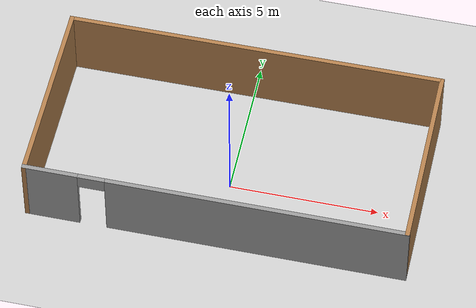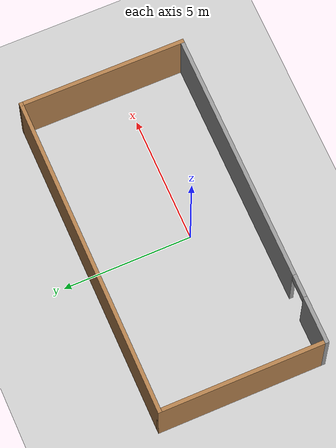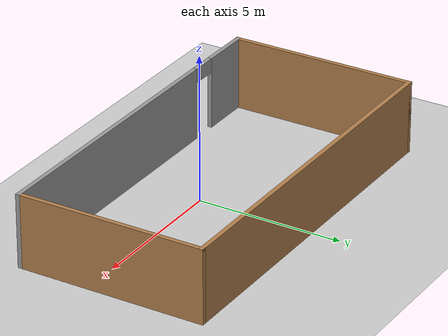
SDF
<sdf version="1.6">
 <world name="default">
  <light name="sun" type="directional">
   <pose>0 0 10 0 -0 0</pose>
   <diffuse>0.8 0.8 0.8 1</diffuse>
   <specular>0.1 0.1 0.1 1</specular>
   <attenuation>
    <range>1000</range>
    <constant>0.9</constant>
    <linear>0.01</linear>
    <quadratic>0.001</quadratic>
   </attenuation>
   <direction>-0.5 0.5 -1</direction>
  </light>
  <model name="ground_plane">
   <static>1</static>
   <link name="link">
    <collision name="collision">
     <geometry><plane><normal>0 0 1</normal><size>100 100</size></plane></geometry>
     <surface><friction><ode><mu>100</mu><mu2>50</mu2></ode></friction></surface>
    </collision>
    <visual name="visual">
     <cast_shadows>0</cast_shadows>
     <geometry><plane><normal>0 0 1</normal><size>100 100</size></plane></geometry>
     <material>
      <script><uri>file://media/materials/scripts/gazebo.material</uri><name>Gazebo/Grey</name></script>
     </material>
    </visual>
   </link>
  </model>
  <gravity>0 0 -9.8</gravity>
  <magnetic_field>6e-06 2.3e-05 -4.2e-05</magnetic_field>
  <atmosphere type="adiabatic"/>
  <physics name="default_physics" default="0" type="ode">
   <max_step_size>0.001</max_step_size>
   <real_time_factor>1</real_time_factor>
   <real_time_update_rate>1000</real_time_update_rate>
  </physics>
  <scene><ambient>0.4 0.4 0.4 1</ambient><background>0.7 0.7 0.7 1</background><shadows>1</shadows></scene>
  <spherical_coordinates>
   <surface_model>EARTH_WGS84</surface_model>
   <latitude_deg>0</latitude_deg>
   <longitude_deg>0</longitude_deg>
   <elevation>0</elevation>
   <heading_deg>0</heading_deg>
  </spherical_coordinates>
  <model name="Untitled">
   <pose>0.012845 0.776919 0 0 -0 0</pose>
   <link name="Wall_17">
    <collision name="Wall_17_Collision">
     <geometry><box><size>12.75 0.15 2.5</size></box></geometry>
     <pose>0 0 1.25 0 -0 0</pose>
    </collision>
    <visual name="Wall_17_Visual">
     <pose>0 0 1.25 0 -0 0</pose>
     <geometry><box><size>12.75 0.15 2.5</size></box></geometry>
     <material>
      <script><uri>file://media/materials/scripts/gazebo.material</uri><name>Gazebo/Wood</name></script>
      <ambient>1 1 1 1</ambient>
     </material>
    </visual>
    <pose>0 3.175 0 0 -0 0</pose>
   </link>
   <link name="Wall_18">
    <collision name="Wall_18_Collision">
     <geometry><box><size>6.5 0.15 2.5</size></box></geometry>
     <pose>0 0 1.25 0 -0 0</pose>
    </collision>
    <visual name="Wall_18_Visual">
     <pose>0 0 1.25 0 -0 0</pose>
     <geometry><box><size>6.5 0.15 2.5</size></box></geometry>
     <material>
      <script><uri>file://media/materials/scripts/gazebo.material</uri><name>Gazebo/Wood</name></script>
      <ambient>1 1 1 1</ambient>
     </material>
    </visual>
    <pose>6.3 0 0 0 0 -1.5708</pose>
   </link>
   <link name="Wall_19">
    <pose>0 -3.175 0 0 -0 3.14159</pose>
    <visual name="Wall_19_Visual_0">
     <pose>-1.3788 0 1.25 0 -0 0</pose>
     <geometry><box><size>9.99239 0.15 2.5</size></box></geometry>
     <material>
      <script><uri>file://media/materials/scripts/gazebo.material</uri><name>Gazebo/Grey</name></script>
      <ambient>1 1 1 1</ambient>
     </material>
    </visual>
    <collision name="Wall_19_Collision_0">
     <geometry><box><size>9.99239 0.15 2.5</size></box></geometry>
     <pose>-1.3788 0 1.25 0 -0 0</pose>
    </collision>
    <visual name="Wall_19_Visual_1">
     <pose>5.4462 0 1.25 0 -0 0</pose>
     <geometry><box><size>1.85761 0.15 2.5</size></box></geometry>
     <material>
      <script><uri>file://media/materials/scripts/gazebo.material</uri><name>Gazebo/Grey</name></script>
      <ambient>1 1 1 1</ambient>
     </material>
    </visual>
    <collision name="Wall_19_Collision_1">
     <geometry><box><size>1.85761 0.15 2.5</size></box></geometry>
     <pose>5.4462 0 1.25 0 -0 0</pose>
    </collision>
    <visual name="Wall_19_Visual_2">
     <pose>4.06739 0 2.25 0 -0 0</pose>
     <geometry><box><size>0.9 0.15 0.5</size></box></geometry>
     <material>
      <script><uri>file://media/materials/scripts/gazebo.material</uri><name>Gazebo/Grey</name></script>
      <ambient>1 1 1 1</ambient>
     </material>
    </visual>
    <collision name="Wall_19_Collision_2">
     <geometry><box><size>0.9 0.15 0.5</size></box></geometry>
     <pose>4.06739 0 2.25 0 -0 0</pose>
    </collision>
   </link>
   <link name="Wall_20">
    <collision name="Wall_20_Collision">
     <geometry><box><size>6.5 0.15 2.5</size></box></geometry>
     <pose>0 0 1.25 0 -0 0</pose>
    </collision>
    <visual name="Wall_20_Visual">
     <pose>0 0 1.25 0 -0 0</pose>
     <geometry><box><size>6.5 0.15 2.5</size></box></geometry>
     <material>
      <script><uri>file://media/materials/scripts/gazebo.material</uri><name>Gazebo/Wood</name></script>
      <ambient>1 1 1 1</ambient>
     </material>
    </visual>
    <pose>-6.3 0 0 0 -0 1.5708</pose>
   </link>
   <static>1</static>
  </model>
 </world>
</sdf>
